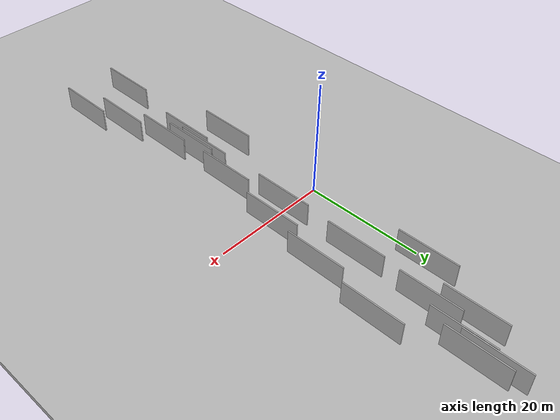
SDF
<?xml version="1.0" encoding="utf-8"?>

<sdf version="1.6">

   <world name="default">

      <gui fullscreen="0">

         <camera name="user_camera">

            <pose>-15 0 4.57585 0 0 0</pose>

            <view_controller>orbit</view_controller>

         </camera>

      </gui>

      <scene>

         <sky>

           <clouds>

             <speed>12</speed>

           </clouds>

         </sky>

         <ambient>0.4 0.4 0.4 1</ambient>

         <background>0.7 0.7 0.7 1</background>

         <shadows>1</shadows>

      </scene>

      <gravity>0 0 -9.8066</gravity>

      <magnetic_field>6e-06 2.3e-05 -4.2e-05</magnetic_field>

      <physics default="0" name="default_physics" type="ode">

         <ode>

            <solver>

               <type>quick</type>

               <iters>10</iters>

               <sor>1.0</sor>

               <use_dynamic_moi_rescaling>0</use_dynamic_moi_rescaling>

            </solver>

            <constraints>

               <cfm>0</cfm>

               <erp>0.2</erp>

               <contact_max_correcting_vel>100</contact_max_correcting_vel>

               <contact_surface_layer>0.001</contact_surface_layer>

            </constraints>

         </ode>

         <max_step_size>0.004</max_step_size>

         <real_time_factor>1</real_time_factor>

         <real_time_update_rate>250</real_time_update_rate>

      </physics>

      <light name="sun" type="directional">

         <cast_shadows>1</cast_shadows>

         <pose>0 0 10 0 0 0</pose>

         <diffuse>0.8 0.8 0.8 1</diffuse>

         <specular>0.2 0.2 0.2 1</specular>

         <attenuation>

            <range>1000</range>

            <constant>0.9</constant>

            <linear>0.01</linear>

            <quadratic>0.001</quadratic>

         </attenuation>

         <direction>-0.5 0.1 -0.9</direction>

      </light>

      <include>

         <name>ground_plane_1</name>

         <uri>model://HANNAS_ground_plane</uri>

         <pose>0 0 0  0 0 0</pose>

      </include>

      <include>

         <name>ground_plane_2</name>

         <uri>model://HANNAS_ground_plane</uri>

         <pose>100 0 0  0 0 0</pose>

      </include>

      <model name="HANNAS_wall_1">

         <static>1</static>

         <pose frame="">3.2157 -16.5060 2.5 0.000000 0.000000 1.570796</pose>

         <link name="link">

            <pose frame="">0 0 2.00 0 0 0</pose>

            <collision name="collision">

               <geometry>

                  <box>

                     <size>10.00 0.2 4.00</size>

                  </box>

               </geometry>

               <max_contacts>10</max_contacts>

               <surface>

                  <contact>

                     <ode/>

                  </contact>

                  <bounce/>

                  <friction>

                     <torsional>

                        <ode/>

                     </torsional>

                     <ode/>

                  </friction>

               </surface>

            </collision>

            <visual name="visual">

               <cast_shadows>0</cast_shadows>

               <geometry>

                  <box>

                     <size>10.00 0.2 4.00</size>

                  </box>

               </geometry>

               <material>

                  <script>

                     <uri>model://HANNAS_wall/materials/scripts</uri>

                     <uri>model://HANNAS_wall/materials/textures</uri>

                     <name>vrc/HANNAS_wall</name>

                  </script>

               </material>

            </visual>

            <self_collide>0</self_collide>

            <enable_wind>0</enable_wind>

            <kinematic>0</kinematic>

         </link>

      </model>

      <model name="HANNAS_wall_2">

         <static>1</static>

         <pose frame="">3.6336 23.5785 2.5 0.000000 0.000000 1.570796</pose>

         <link name="link">

            <pose frame="">0 0 2.00 0 0 0</pose>

            <collision name="collision">

               <geometry>

                  <box>

                     <size>10.00 0.2 4.00</size>

                  </box>

               </geometry>

               <max_contacts>10</max_contacts>

               <surface>

                  <contact>

                     <ode/>

                  </contact>

                  <bounce/>

                  <friction>

                     <torsional>

                        <ode/>

                     </torsional>

                     <ode/>

                  </friction>

               </surface>

            </collision>

            <visual name="visual">

               <cast_shadows>0</cast_shadows>

               <geometry>

                  <box>

                     <size>10.00 0.2 4.00</size>

                  </box>

               </geometry>

               <material>

                  <script>

                     <uri>model://HANNAS_wall/materials/scripts</uri>

                     <uri>model://HANNAS_wall/materials/textures</uri>

                     <name>vrc/HANNAS_wall</name>

                  </script>

               </material>

            </visual>

            <self_collide>0</self_collide>

            <enable_wind>0</enable_wind>

            <kinematic>0</kinematic>

         </link>

      </model>

      <model name="HANNAS_wall_3">

         <static>1</static>

         <pose frame="">12.9591 2.9089 2.5 0.000000 0.000000 1.570796</pose>

         <link name="link">

            <pose frame="">0 0 2.00 0 0 0</pose>

            <collision name="collision">

               <geometry>

                  <box>

                     <size>10.00 0.2 4.00</size>

                  </box>

               </geometry>

               <max_contacts>10</max_contacts>

               <surface>

                  <contact>

                     <ode/>

                  </contact>

                  <bounce/>

                  <friction>

                     <torsional>

                        <ode/>

                     </torsional>

                     <ode/>

                  </friction>

               </surface>

            </collision>

            <visual name="visual">

               <cast_shadows>0</cast_shadows>

               <geometry>

                  <box>

                     <size>10.00 0.2 4.00</size>

                  </box>

               </geometry>

               <material>

                  <script>

                     <uri>model://HANNAS_wall/materials/scripts</uri>

                     <uri>model://HANNAS_wall/materials/textures</uri>

                     <name>vrc/HANNAS_wall</name>

                  </script>

               </material>

            </visual>

            <self_collide>0</self_collide>

            <enable_wind>0</enable_wind>

            <kinematic>0</kinematic>

         </link>

      </model>

      <model name="HANNAS_wall_4">

         <static>1</static>

         <pose frame="">11.2151 -23.1242 2.5 0.000000 0.000000 1.570796</pose>

         <link name="link">

            <pose frame="">0 0 2.00 0 0 0</pose>

            <collision name="collision">

               <geometry>

                  <box>

                     <size>10.00 0.2 4.00</size>

                  </box>

               </geometry>

               <max_contacts>10</max_contacts>

               <surface>

                  <contact>

                     <ode/>

                  </contact>

                  <bounce/>

                  <friction>

                     <torsional>

                        <ode/>

                     </torsional>

                     <ode/>

                  </friction>

               </surface>

            </collision>

            <visual name="visual">

               <cast_shadows>0</cast_shadows>

               <geometry>

                  <box>

                     <size>10.00 0.2 4.00</size>

                  </box>

               </geometry>

               <material>

                  <script>

                     <uri>model://HANNAS_wall/materials/scripts</uri>

                     <uri>model://HANNAS_wall/materials/textures</uri>

                     <name>vrc/HANNAS_wall</name>

                  </script>

               </material>

            </visual>

            <self_collide>0</self_collide>

            <enable_wind>0</enable_wind>

            <kinematic>0</kinematic>

         </link>

      </model>

      <model name="HANNAS_wall_5">

         <static>1</static>

         <pose frame="">8.7948 1.2657 2.5 0.000000 0.000000 1.570796</pose>

         <link name="link">

            <pose frame="">0 0 2.00 0 0 0</pose>

            <collision name="collision">

               <geometry>

                  <box>

                     <size>10.00 0.2 4.00</size>

                  </box>

               </geometry>

               <max_contacts>10</max_contacts>

               <surface>

                  <contact>

                     <ode/>

                  </contact>

                  <bounce/>

                  <friction>

                     <torsional>

                        <ode/>

                     </torsional>

                     <ode/>

                  </friction>

               </surface>

            </collision>

            <visual name="visual">

               <cast_shadows>0</cast_shadows>

               <geometry>

                  <box>

                     <size>10.00 0.2 4.00</size>

                  </box>

               </geometry>

               <material>

                  <script>

                     <uri>model://HANNAS_wall/materials/scripts</uri>

                     <uri>model://HANNAS_wall/materials/textures</uri>

                     <name>vrc/HANNAS_wall</name>

                  </script>

               </material>

            </visual>

            <self_collide>0</self_collide>

            <enable_wind>0</enable_wind>

            <kinematic>0</kinematic>

         </link>

      </model>

      <model name="HANNAS_wall_6">

         <static>1</static>

         <pose frame="">14.7367 12.7929 2.5 0.000000 0.000000 1.570796</pose>

         <link name="link">

            <pose frame="">0 0 2.00 0 0 0</pose>

            <collision name="collision">

               <geometry>

                  <box>

                     <size>10.00 0.2 4.00</size>

                  </box>

               </geometry>

               <max_contacts>10</max_contacts>

               <surface>

                  <contact>

                     <ode/>

                  </contact>

                  <bounce/>

                  <friction>

                     <torsional>

                        <ode/>

                     </torsional>

                     <ode/>

                  </friction>

               </surface>

            </collision>

            <visual name="visual">

               <cast_shadows>0</cast_shadows>

               <geometry>

                  <box>

                     <size>10.00 0.2 4.00</size>

                  </box>

               </geometry>

               <material>

                  <script>

                     <uri>model://HANNAS_wall/materials/scripts</uri>

                     <uri>model://HANNAS_wall/materials/textures</uri>

                     <name>vrc/HANNAS_wall</name>

                  </script>

               </material>

            </visual>

            <self_collide>0</self_collide>

            <enable_wind>0</enable_wind>

            <kinematic>0</kinematic>

         </link>

      </model>

      <model name="HANNAS_wall_7">

         <static>1</static>

         <pose frame="">9.7365 28.2212 2.5 0.000000 0.000000 1.570796</pose>

         <link name="link">

            <pose frame="">0 0 2.00 0 0 0</pose>

            <collision name="collision">

               <geometry>

                  <box>

                     <size>10.00 0.2 4.00</size>

                  </box>

               </geometry>

               <max_contacts>10</max_contacts>

               <surface>

                  <contact>

                     <ode/>

                  </contact>

                  <bounce/>

                  <friction>

                     <torsional>

                        <ode/>

                     </torsional>

                     <ode/>

                  </friction>

               </surface>

            </collision>

            <visual name="visual">

               <cast_shadows>0</cast_shadows>

               <geometry>

                  <box>

                     <size>10.00 0.2 4.00</size>

                  </box>

               </geometry>

               <material>

                  <script>

                     <uri>model://HANNAS_wall/materials/scripts</uri>

                     <uri>model://HANNAS_wall/materials/textures</uri>

                     <name>vrc/HANNAS_wall</name>

                  </script>

               </material>

            </visual>

            <self_collide>0</self_collide>

            <enable_wind>0</enable_wind>

            <kinematic>0</kinematic>

         </link>

      </model>

      <model name="HANNAS_wall_8">

         <static>1</static>

         <pose frame="">9.7414 -18.2163 2.5 0.000000 0.000000 1.570796</pose>

         <link name="link">

            <pose frame="">0 0 2.00 0 0 0</pose>

            <collision name="collision">

               <geometry>

                  <box>

                     <size>10.00 0.2 4.00</size>

                  </box>

               </geometry>

               <max_contacts>10</max_contacts>

               <surface>

                  <contact>

                     <ode/>

                  </contact>

                  <bounce/>

                  <friction>

                     <torsional>

                        <ode/>

                     </torsional>

                     <ode/>

                  </friction>

               </surface>

            </collision>

            <visual name="visual">

               <cast_shadows>0</cast_shadows>

               <geometry>

                  <box>

                     <size>10.00 0.2 4.00</size>

                  </box>

               </geometry>

               <material>

                  <script>

                     <uri>model://HANNAS_wall/materials/scripts</uri>

                     <uri>model://HANNAS_wall/materials/textures</uri>

                     <name>vrc/HANNAS_wall</name>

                  </script>

               </material>

            </visual>

            <self_collide>0</self_collide>

            <enable_wind>0</enable_wind>

            <kinematic>0</kinematic>

         </link>

      </model>

      <model name="HANNAS_wall_9">

         <static>1</static>

         <pose frame="">13.2367 37.5575 2.5 0.000000 0.000000 1.570796</pose>

         <link name="link">

            <pose frame="">0 0 2.00 0 0 0</pose>

            <collision name="collision">

               <geometry>

                  <box>

                     <size>10.00 0.2 4.00</size>

                  </box>

               </geometry>

               <max_contacts>10</max_contacts>

               <surface>

                  <contact>

                     <ode/>

                  </contact>

                  <bounce/>

                  <friction>

                     <torsional>

                        <ode/>

                     </torsional>

                     <ode/>

                  </friction>

               </surface>

            </collision>

            <visual name="visual">

               <cast_shadows>0</cast_shadows>

               <geometry>

                  <box>

                     <size>10.00 0.2 4.00</size>

                  </box>

               </geometry>

               <material>

                  <script>

                     <uri>model://HANNAS_wall/materials/scripts</uri>

                     <uri>model://HANNAS_wall/materials/textures</uri>

                     <name>vrc/HANNAS_wall</name>

                  </script>

               </material>

            </visual>

            <self_collide>0</self_collide>

            <enable_wind>0</enable_wind>

            <kinematic>0</kinematic>

         </link>

      </model>

      <model name="HANNAS_wall_10">

         <static>1</static>

         <pose frame="">8.2587 -20.9120 2.5 0.000000 0.000000 1.570796</pose>

         <link name="link">

            <pose frame="">0 0 2.00 0 0 0</pose>

            <collision name="collision">

               <geometry>

                  <box>

                     <size>10.00 0.2 4.00</size>

                  </box>

               </geometry>

               <max_contacts>10</max_contacts>

               <surface>

                  <contact>

                     <ode/>

                  </contact>

                  <bounce/>

                  <friction>

                     <torsional>

                        <ode/>

                     </torsional>

                     <ode/>

                  </friction>

               </surface>

            </collision>

            <visual name="visual">

               <cast_shadows>0</cast_shadows>

               <geometry>

                  <box>

                     <size>10.00 0.2 4.00</size>

                  </box>

               </geometry>

               <material>

                  <script>

                     <uri>model://HANNAS_wall/materials/scripts</uri>

                     <uri>model://HANNAS_wall/materials/textures</uri>

                     <name>vrc/HANNAS_wall</name>

                  </script>

               </material>

            </visual>

            <self_collide>0</self_collide>

            <enable_wind>0</enable_wind>

            <kinematic>0</kinematic>

         </link>

      </model>

      <model name="HANNAS_wall_11">

         <static>1</static>

         <pose frame="">6.3979 -38.4848 2.5 0.000000 0.000000 1.570796</pose>

         <link name="link">

            <pose frame="">0 0 2.00 0 0 0</pose>

            <collision name="collision">

               <geometry>

                  <box>

                     <size>10.00 0.2 4.00</size>

                  </box>

               </geometry>

               <max_contacts>10</max_contacts>

               <surface>

                  <contact>

                     <ode/>

                  </contact>

                  <bounce/>

                  <friction>

                     <torsional>

                        <ode/>

                     </torsional>

                     <ode/>

                  </friction>

               </surface>

            </collision>

            <visual name="visual">

               <cast_shadows>0</cast_shadows>

               <geometry>

                  <box>

                     <size>10.00 0.2 4.00</size>

                  </box>

               </geometry>

               <material>

                  <script>

                     <uri>model://HANNAS_wall/materials/scripts</uri>

                     <uri>model://HANNAS_wall/materials/textures</uri>

                     <name>vrc/HANNAS_wall</name>

                  </script>

               </material>

            </visual>

            <self_collide>0</self_collide>

            <enable_wind>0</enable_wind>

            <kinematic>0</kinematic>

         </link>

      </model>

      <model name="HANNAS_wall_12">

         <static>1</static>

         <pose frame="">16.7571 24.2096 2.5 0.000000 0.000000 1.570796</pose>

         <link name="link">

            <pose frame="">0 0 2.00 0 0 0</pose>

            <collision name="collision">

               <geometry>

                  <box>

                     <size>10.00 0.2 4.00</size>

                  </box>

               </geometry>

               <max_contacts>10</max_contacts>

               <surface>

                  <contact>

                     <ode/>

                  </contact>

                  <bounce/>

                  <friction>

                     <torsional>

                        <ode/>

                     </torsional>

                     <ode/>

                  </friction>

               </surface>

            </collision>

            <visual name="visual">

               <cast_shadows>0</cast_shadows>

               <geometry>

                  <box>

                     <size>10.00 0.2 4.00</size>

                  </box>

               </geometry>

               <material>

                  <script>

                     <uri>model://HANNAS_wall/materials/scripts</uri>

                     <uri>model://HANNAS_wall/materials/textures</uri>

                     <name>vrc/HANNAS_wall</name>

                  </script>

               </material>

            </visual>

            <self_collide>0</self_collide>

            <enable_wind>0</enable_wind>

            <kinematic>0</kinematic>

         </link>

      </model>

      <model name="HANNAS_wall_13">

         <static>1</static>

         <pose frame="">10.8888 -8.8937 2.5 0.000000 0.000000 1.570796</pose>

         <link name="link">

            <pose frame="">0 0 2.00 0 0 0</pose>

            <collision name="collision">

               <geometry>

                  <box>

                     <size>10.00 0.2 4.00</size>

                  </box>

               </geometry>

               <max_contacts>10</max_contacts>

               <surface>

                  <contact>

                     <ode/>

                  </contact>

                  <bounce/>

                  <friction>

                     <torsional>

                        <ode/>

                     </torsional>

                     <ode/>

                  </friction>

               </surface>

            </collision>

            <visual name="visual">

               <cast_shadows>0</cast_shadows>

               <geometry>

                  <box>

                     <size>10.00 0.2 4.00</size>

                  </box>

               </geometry>

               <material>

                  <script>

                     <uri>model://HANNAS_wall/materials/scripts</uri>

                     <uri>model://HANNAS_wall/materials/textures</uri>

                     <name>vrc/HANNAS_wall</name>

                  </script>

               </material>

            </visual>

            <self_collide>0</self_collide>

            <enable_wind>0</enable_wind>

            <kinematic>0</kinematic>

         </link>

      </model>

      <model name="HANNAS_wall_14">

         <static>1</static>

         <pose frame="">12.1354 39.4967 2.5 0.000000 0.000000 1.570796</pose>

         <link name="link">

            <pose frame="">0 0 2.00 0 0 0</pose>

            <collision name="collision">

               <geometry>

                  <box>

                     <size>10.00 0.2 4.00</size>

                  </box>

               </geometry>

               <max_contacts>10</max_contacts>

               <surface>

                  <contact>

                     <ode/>

                  </contact>

                  <bounce/>

                  <friction>

                     <torsional>

                        <ode/>

                     </torsional>

                     <ode/>

                  </friction>

               </surface>

            </collision>

            <visual name="visual">

               <cast_shadows>0</cast_shadows>

               <geometry>

                  <box>

                     <size>10.00 0.2 4.00</size>

                  </box>

               </geometry>

               <material>

                  <script>

                     <uri>model://HANNAS_wall/materials/scripts</uri>

                     <uri>model://HANNAS_wall/materials/textures</uri>

                     <name>vrc/HANNAS_wall</name>

                  </script>

               </material>

            </visual>

            <self_collide>0</self_collide>

            <enable_wind>0</enable_wind>

            <kinematic>0</kinematic>

         </link>

      </model>

      <model name="HANNAS_wall_15">

         <static>1</static>

         <pose frame="">12.9927 -31.8106 2.5 0.000000 0.000000 1.570796</pose>

         <link name="link">

            <pose frame="">0 0 2.00 0 0 0</pose>

            <collision name="collision">

               <geometry>

                  <box>

                     <size>10.00 0.2 4.00</size>

                  </box>

               </geometry>

               <max_contacts>10</max_contacts>

               <surface>

                  <contact>

                     <ode/>

                  </contact>

                  <bounce/>

                  <friction>

                     <torsional>

                        <ode/>

                     </torsional>

                     <ode/>

                  </friction>

               </surface>

            </collision>

            <visual name="visual">

               <cast_shadows>0</cast_shadows>

               <geometry>

                  <box>

                     <size>10.00 0.2 4.00</size>

                  </box>

               </geometry>

               <material>

                  <script>

                     <uri>model://HANNAS_wall/materials/scripts</uri>

                     <uri>model://HANNAS_wall/materials/textures</uri>

                     <name>vrc/HANNAS_wall</name>

                  </script>

               </material>

            </visual>

            <self_collide>0</self_collide>

            <enable_wind>0</enable_wind>

            <kinematic>0</kinematic>

         </link>

      </model>

      <model name="HANNAS_wall_16">

         <static>1</static>

         <pose frame="">9.2620 15.4236 2.5 0.000000 0.000000 1.570796</pose>

         <link name="link">

            <pose frame="">0 0 2.00 0 0 0</pose>

            <collision name="collision">

               <geometry>

                  <box>

                     <size>10.00 0.2 4.00</size>

                  </box>

               </geometry>

               <max_contacts>10</max_contacts>

               <surface>

                  <contact>

                     <ode/>

                  </contact>

                  <bounce/>

                  <friction>

                     <torsional>

                        <ode/>

                     </torsional>

                     <ode/>

                  </friction>

               </surface>

            </collision>

            <visual name="visual">

               <cast_shadows>0</cast_shadows>

               <geometry>

                  <box>

                     <size>10.00 0.2 4.00</size>

                  </box>

               </geometry>

               <material>

                  <script>

                     <uri>model://HANNAS_wall/materials/scripts</uri>

                     <uri>model://HANNAS_wall/materials/textures</uri>

                     <name>vrc/HANNAS_wall</name>

                  </script>

               </material>

            </visual>

            <self_collide>0</self_collide>

            <enable_wind>0</enable_wind>

            <kinematic>0</kinematic>

         </link>

      </model>

      <model name="HANNAS_wall_17">

         <static>1</static>

         <pose frame="">7.6614 33.7399 2.5 0.000000 0.000000 1.570796</pose>

         <link name="link">

            <pose frame="">0 0 2.00 0 0 0</pose>

            <collision name="collision">

               <geometry>

                  <box>

                     <size>10.00 0.2 4.00</size>

                  </box>

               </geometry>

               <max_contacts>10</max_contacts>

               <surface>

                  <contact>

                     <ode/>

                  </contact>

                  <bounce/>

                  <friction>

                     <torsional>

                        <ode/>

                     </torsional>

                     <ode/>

                  </friction>

               </surface>

            </collision>

            <visual name="visual">

               <cast_shadows>0</cast_shadows>

               <geometry>

                  <box>

                     <size>10.00 0.2 4.00</size>

                  </box>

               </geometry>

               <material>

                  <script>

                     <uri>model://HANNAS_wall/materials/scripts</uri>

                     <uri>model://HANNAS_wall/materials/textures</uri>

                     <name>vrc/HANNAS_wall</name>

                  </script>

               </material>

            </visual>

            <self_collide>0</self_collide>

            <enable_wind>0</enable_wind>

            <kinematic>0</kinematic>

         </link>

      </model>

      <model name="HANNAS_wall_18">

         <static>1</static>

         <pose frame="">11.8549 34.5748 2.5 0.000000 0.000000 1.570796</pose>

         <link name="link">

            <pose frame="">0 0 2.00 0 0 0</pose>

            <collision name="collision">

               <geometry>

                  <box>

                     <size>10.00 0.2 4.00</size>

                  </box>

               </geometry>

               <max_contacts>10</max_contacts>

               <surface>

                  <contact>

                     <ode/>

                  </contact>

                  <bounce/>

                  <friction>

                     <torsional>

                        <ode/>

                     </torsional>

                     <ode/>

                  </friction>

               </surface>

            </collision>

            <visual name="visual">

               <cast_shadows>0</cast_shadows>

               <geometry>

                  <box>

                     <size>10.00 0.2 4.00</size>

                  </box>

               </geometry>

               <material>

                  <script>

                     <uri>model://HANNAS_wall/materials/scripts</uri>

                     <uri>model://HANNAS_wall/materials/textures</uri>

                     <name>vrc/HANNAS_wall</name>

                  </script>

               </material>

            </visual>

            <self_collide>0</self_collide>

            <enable_wind>0</enable_wind>

            <kinematic>0</kinematic>

         </link>

      </model>

      <model name="HANNAS_wall_19">

         <static>1</static>

         <pose frame="">8.9629 -15.9608 2.5 0.000000 0.000000 1.570796</pose>

         <link name="link">

            <pose frame="">0 0 2.00 0 0 0</pose>

            <collision name="collision">

               <geometry>

                  <box>

                     <size>10.00 0.2 4.00</size>

                  </box>

               </geometry>

               <max_contacts>10</max_contacts>

               <surface>

                  <contact>

                     <ode/>

                  </contact>

                  <bounce/>

                  <friction>

                     <torsional>

                        <ode/>

                     </torsional>

                     <ode/>

                  </friction>

               </surface>

            </collision>

            <visual name="visual">

               <cast_shadows>0</cast_shadows>

               <geometry>

                  <box>

                     <size>10.00 0.2 4.00</size>

                  </box>

               </geometry>

               <material>

                  <script>

                     <uri>model://HANNAS_wall/materials/scripts</uri>

                     <uri>model://HANNAS_wall/materials/textures</uri>

                     <name>vrc/HANNAS_wall</name>

                  </script>

               </material>

            </visual>

            <self_collide>0</self_collide>

            <enable_wind>0</enable_wind>

            <kinematic>0</kinematic>

         </link>

      </model>

      <model name="HANNAS_wall_20">

         <static>1</static>

         <pose frame="">15.4464 -38.6101 2.5 0.000000 0.000000 1.570796</pose>

         <link name="link">

            <pose frame="">0 0 2.00 0 0 0</pose>

            <collision name="collision">

               <geometry>

                  <box>

                     <size>10.00 0.2 4.00</size>

                  </box>

               </geometry>

               <max_contacts>10</max_contacts>

               <surface>

                  <contact>

                     <ode/>

                  </contact>

                  <bounce/>

                  <friction>

                     <torsional>

                        <ode/>

                     </torsional>

                     <ode/>

                  </friction>

               </surface>

            </collision>

            <visual name="visual">

               <cast_shadows>0</cast_shadows>

               <geometry>

                  <box>

                     <size>10.00 0.2 4.00</size>

                  </box>

               </geometry>

               <material>

                  <script>

                     <uri>model://HANNAS_wall/materials/scripts</uri>

                     <uri>model://HANNAS_wall/materials/textures</uri>

                     <name>vrc/HANNAS_wall</name>

                  </script>

               </material>

            </visual>

            <self_collide>0</self_collide>

            <enable_wind>0</enable_wind>

            <kinematic>0</kinematic>

         </link>

      </model>

   </world>

</sdf>

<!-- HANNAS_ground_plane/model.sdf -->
<sdf version="1.4">
<model name="HANNAS_ground_plane">
  <static>true</static>
    <link name="link">
      <collision name="collision">
        <geometry>
          <plane>
            <normal>0 0 1</normal>
            <size>1000 1000</size>
          </plane>
        </geometry>
        <surface>
          <friction>
            <ode>
              <mu>100</mu>
              <mu2>50</mu2>
            </ode>
          </friction>
        </surface>
      </collision>
      <visual name="visual">
        <cast_shadows>false</cast_shadows>
        <geometry>
          <plane>
            <normal>0 0 1</normal>
            <size>1000 1000</size>
          </plane>
        </geometry>
        <material>
          <script>
            <uri>model://HANNAS_ground_plane/materials/scripts/HANNAS_ground_plane.material</uri>
	    <uri>model://HANNAS_ground_plane/materials/textures</uri>
            <name>HANNASGroundPlane/Image</name>
          </script>
        </material>
      </visual>
    </link>
  </model>
</sdf>
